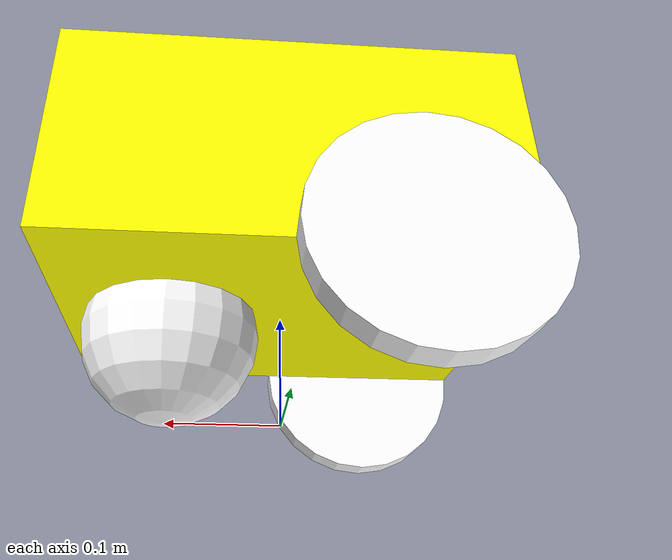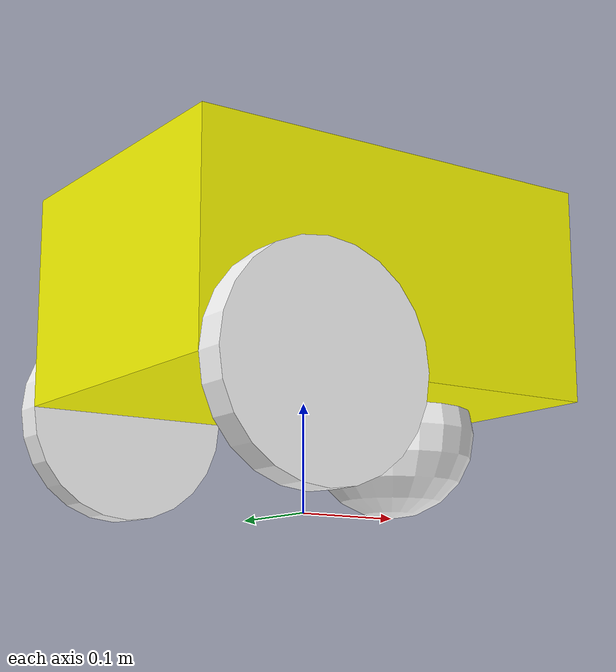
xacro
<?xml version="1.0" ?>
<robot name="simrobo" xmlns:xacro="http://www.ros.org/wiki/xacro">
  <!-- include xacro files -->
  <xacro:include filename="$(find simrobo_description)/urdf/body/body.urdf.xacro" />
  <xacro:include filename="$(find simrobo_description)/urdf/wheel/wheel.urdf.xacro" />
  <xacro:include filename="$(find simrobo_description)/urdf/wheel/caster.urdf.xacro" />
  <xacro:include filename="$(find simrobo_description)/urdf/sensors/lidar.urdf.xacro" />
  <xacro:include filename="$(find simrobo_description)/urdf/sensors/velodyne.urdf.xacro" />
  <xacro:include filename="$(find simrobo_description)/urdf/sensors/camera.urdf.xacro" />
  <xacro:include filename="$(find simrobo_description)/urdf/simrobo.ros2_control.xacro" />

  <!-- arg -->
  <xacro:arg name="use_ignition" default="true"/>
  <xacro:arg name="use_3d_lidar" default="false"/>
  <xacro:arg name="gpu" default="false"/>

  <!-- property -->
  <xacro:property name="use_ignition" value="$(arg use_ignition)"/>
  <xacro:property name="use_3d_lidar" value="$(arg use_3d_lidar)"/>
  <xacro:property name="gpu" value="$(arg gpu)"/>
  <xacro:property name="body_depth" value="0.4"/>
  <xacro:property name="body_width" value="0.3"/>
  <xacro:property name="body_height" value="0.2"/>
  <xacro:property name="body_mass" value="1"/>
  <xacro:property name="wheel_radius" value="0.1"/>
  <xacro:property name="wheel_clearance" value="0.03"/>
  <xacro:property name="wheel_mass" value="0.4"/>
  <xacro:property name="wheel_joint_x" value="-0.1"/>
  <xacro:property name="caster_radius" value="0.08"/>
  <xacro:property name="caster_mass" value="0.2"/>
  <xacro:property name="caster_joint_x" value="0.1"/>
  <xacro:property name="lidar_2d_radius" value="0.04"/>
  <xacro:property name="lidar_2d_length" value="0.04"/>
  <xacro:property name="lidar_2d_mass" value="0.015"/>
  <xacro:property name="lidar_3d_radius" value="0.103"/>
  <xacro:property name="lidar_3d_length" value="0.0727"/>
  <xacro:property name="lidar_3d_mass" value="0.830"/>
  <xacro:property name="lidar_3d_mount_mass" value="0.4"/>
  <xacro:property name="imu_length" value="0.02"/>
  <xacro:property name="imu_height" value="0.01"/>
  <xacro:property name="imu_mass" value="0.01"/>
  <xacro:property name="gps_length" value="0.02"/>
  <xacro:property name="gps_height" value="0.01"/>
  <xacro:property name="gps_mass" value="0.01"/>
  <xacro:property name="camera_depth" value="0.02"/>
  <xacro:property name="camera_width" value="0.12"/>
  <xacro:property name="camera_height" value="0.02"/>
  <xacro:property name="camera_mass" value="0.1"/>
  <xacro:property name="camera_pos_z" value="0.15"/>

  <!-- ======== Body Description ======== -->
  <link name="base_footprint"/>
  <xacro:body name="base_link" depth="${body_depth}" width="${body_width}" height="${body_height}" mass="${body_mass}">
    <origin xyz="0 0 ${wheel_radius}" rpy="0 0 0"/>
  </xacro:body>

  <!-- ======== Wheel Description ======== -->
  <xacro:wheel name="left" parent="base_link" radius="${wheel_radius}" clearance="${wheel_clearance}" mass="${wheel_mass}">
    <origin xyz="${wheel_joint_x} ${body_width/2+wheel_clearance/2} 0" rpy="${-pi/2} 0 0"/>
  </xacro:wheel>
  <xacro:wheel name="right" parent="base_link" radius="${wheel_radius}" clearance="${wheel_clearance}" mass="${wheel_mass}">
    <origin xyz="${wheel_joint_x} ${-body_width/2-wheel_clearance/2} 0" rpy="${-pi/2} 0 0"/>
  </xacro:wheel>
  <xacro:caster name="front" parent="base_link" radius="${caster_radius}" mass="${caster_mass}">
    <origin xyz="${caster_joint_x} 0 ${-wheel_radius+caster_radius}" rpy="0 0 0"/>
  </xacro:caster>

  <!-- ======== Sensors Description ======== -->
  <xacro:if value="${use_3d_lidar}">
    <link name="lidar_mount">
      <inertial>
        <origin xyz="0 0 0" rpy="0 0 0"/>
        <mass value="${lidar_3d_mount_mass}"/>
        <inertia ixx="${lidar_3d_mount_mass/12*(3*0.08*0.08+0.3*0.3)}" ixy="0" ixz="0"
                 iyx="0" iyy="${lidar_3d_mount_mass/12*(3*0.08*0.08+0.3*0.3)}" iyz="0.0"
                 izx="0" izy="0" izz="${lidar_3d_mount_mass/2*0.08*0.08}"/>
      </inertial>
      <visual>
        <origin xyz="0 0 0" rpy="0 0 0"/>
        <geometry>
          <cylinder radius="0.08" length="0.3"/>
        </geometry>
        <material name="lidar_mount_color">
          <color rgba="1.0 1.0 0.0 1.0"/>
        </material>
      </visual>
      <collision>
        <origin xyz="0 0 0" rpy="0 0 0"/>
        <geometry>
          <cylinder  radius="0.08" length="0.3"/>
        </geometry>
      </collision>
    </link>
    <joint name="lidar_mount_joint" type="fixed">
      <origin xyz="0 0 ${body_height+0.3/2}" rpy="0 0 0"/>
      <parent link="base_link"/>
      <child link="lidar_mount"/>
    </joint>
    <xacro:velodyne name="velodyne" gpu="${gpu}" parent="lidar_mount" radius="${lidar_3d_radius}" length="${lidar_3d_length}" mass="${lidar_3d_mass}">
      <origin xyz="0 0 0.15" rpy="0 0 0"/>
    </xacro:velodyne>
  </xacro:if>
  <xacro:unless value="${use_3d_lidar}">
    <xacro:lidar name="laser" use_ignition="${use_ignition}" gpu="${gpu}" parent="base_link" radius="${lidar_2d_radius}" length="${lidar_2d_length}" mass="${lidar_2d_mass}">
      <origin xyz="0 0 ${body_height+lidar_2d_length/2}" rpy="0 0 0"/>
    </xacro:lidar>
  </xacro:unless>
  <xacro:camera name="camera" use_ignition="${use_ignition}" parent="base_link" depth="${camera_depth}" width="${camera_width}" height="${camera_height}" mass="${camera_mass}">
    <origin xyz="${(body_depth+camera_depth)/2} 0 ${camera_pos_z}" rpy="0 0 0"/>
  </xacro:camera>

  <!-- ======== ros2_control ======== -->
  <xacro:simrobo_ros2_control name="simrobo" use_ignition="${use_ignition}"/>

</robot>

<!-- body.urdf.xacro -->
<robot name="body" xmlns:xacro="http://www.ros.org/wiki/xacro">

  <xacro:macro name="body" params="name depth width height mass *origin">

    <link name="${name}">
      <inertial>
        <origin xyz="0 0 0" rpy="0 0 0"/>
        <mass value="${mass}" />
        <inertia ixx="${mass/12*(width*width+height*height)}" ixy="0" ixz="0"
                 iyx="0" iyy="${mass/12*(depth*depth+height*height)}" iyz="0"
                 izx="0" izy="0" izz="${mass/12*(depth*depth+width*width)}"/>
      </inertial>
      <visual>
        <origin xyz="0 0 ${height/2}" rpy="0 0 0"/>
        <geometry>
          <box size="${depth} ${width} ${height}"/>
        </geometry>
        <material name="body_color">
          <color rgba="1.0 1.0 0.0 1.0"/>
        </material>
      </visual>
      <collision>
        <origin xyz="0 0 ${height/2}" rpy="0 0 0"/>
        <geometry>
          <box size="${depth} ${width} ${height}"/>
        </geometry>
      </collision>
    </link>

    <gazebo reference="${name}">
      <material>Gazebo/Yellow</material>
      <mu1 value="0.8"/>
      <mu2 value="0.8"/>
      <kp value="10000000.0"/>
      <kd value="1.0"/>
      <fdir1 value="0 1 0"/>
    </gazebo>

    <joint name="body_joint" type="fixed">
      <xacro:insert_block name="origin"/>
      <parent link="base_footprint"/>
      <child link="${name}"/>
      <axis xyz="0.0 0.0 1.0"/>
    </joint>
  </xacro:macro>
</robot>

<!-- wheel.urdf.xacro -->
<robot name="wheel" xmlns:xacro="http://www.ros.org/wiki/xacro">
  <xacro:include filename="$(find simrobo_description)/urdf/wheel/wheel.gazebo.xacro" />

  <xacro:macro name="wheel" params="name parent radius clearance mass *origin">
    <material name="${name}_wheel_color">
      <color rgba="1.0 1.0 1.0 1.0"/>
    </material>

    <link name="${name}_wheel_link">
      <inertial>
        <origin xyz="0 0 0" rpy="0 0 0"/>
        <mass value="${mass}"/>
        <inertia ixx="${mass/12*(3*radius*radius+clearance*clearance)}" ixy="0" ixz="0"
                 iyx="0" iyy="${mass/12*(3*radius*radius+clearance*clearance)}" iyz="0"
                 izx="0" izy="0" izz="${mass/2*radius*radius}"/>
      </inertial>
      <visual>
        <origin xyz="0 0 0" rpy="0 0 0"/>
        <geometry>
          <cylinder radius="${radius}" length="${clearance}"/>
        </geometry>
        <material name="${name}_wheel_color"/>
      </visual>
      <collision>
        <origin rpy="0 0 0" xyz="0 0 0"/>
        <geometry>
          <cylinder radius="${radius}" length="${clearance}"/>
        </geometry>
      </collision>
    </link>

    <joint name="${name}_wheel_joint" type="continuous">
      <xacro:insert_block name="origin"/>
      <parent link="${parent}"/>
      <child link="${name}_wheel_link"/>
      <axis xyz="0.0 0.0 1.0"/>
    </joint>

    <!-- Gazebo Plugin -->
    <xacro:wheel_gazebo name="${name}"/>
  </xacro:macro>
</robot>

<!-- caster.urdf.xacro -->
<robot name="caster" xmlns:xacro="http://www.ros.org/wiki/xacro">
  <xacro:include filename="$(find simrobo_description)/urdf/wheel/caster.gazebo.xacro" />

  <xacro:macro name="caster" params="name parent radius mass *origin">
    <material name="${name}_caster_color">
      <color rgba="1.0 1.0 1.0 1.0"/>
    </material>

    <link name="${name}_caster_link">
      <inertial>
        <origin xyz="0 0 0" rpy="0 0 0"/>
        <mass value="${mass}"/>
        <inertia ixx="${2/5*mass*radius*radius}" ixy="0" ixz="0"
                 iyx="0" iyy="${2/5*mass*radius*radius}" iyz="0"
                 izx="0" izy="0" izz="${2/5*mass*radius*radius}"/>
      </inertial>
      <visual>
        <origin xyz="0 0 0" rpy="0 0 0"/>
        <geometry>
          <sphere radius="${radius}"/>
        </geometry>
        <material name="${name}_caster_color"/>
      </visual>
      <collision>
        <origin rpy="0 0 0" xyz="0 0 0"/>
        <geometry>
          <sphere radius="${radius}"/>
        </geometry>
      </collision>
    </link>

    <joint name="${name}_caster_joint" type="fixed">
      <xacro:insert_block name="origin"/>
      <parent link="${parent}"/>
      <child link="${name}_caster_link"/>
      <axis xyz="0.0 0.0 1.0"/>
    </joint>

    <!-- Gazebo Plugin -->
    <xacro:caster_gazebo name="${name}"/>
  </xacro:macro>
</robot>

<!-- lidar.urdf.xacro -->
<robot name="lidar" xmlns:xacro="http://www.ros.org/wiki/xacro">
  <xacro:include filename="$(find simrobo_description)/urdf/sensors/lidar.gazebo.xacro"/>

  <xacro:macro name="lidar" params="name:=laser use_ignition:=true gpu:=false parent radius length mass *origin">
    <material name="${name}_color">
      <color rgba="0.70196 0.70196 0.70196 1.0"/>
    </material>

    <link name="${name}">
      <inertial>
        <origin xyz="0 0 0" rpy="0 0 0"/>
        <mass value="${mass}"/>
        <inertia ixx="${mass/12*(3*radius*radius+length*length)}" ixy="0" ixz="0"
                 iyx="0" iyy="${mass/12*(3*radius*radius+length*length)}" iyz="0.0"
                 izx="0" izy="0" izz="${mass/2*radius*radius}"/>
      </inertial>
      <visual>
        <origin xyz="0 0 0" rpy="0 0 0"/>
        <geometry>
          <cylinder radius="${radius}" length="${length}"/>
        </geometry>
        <material name="${name}_color"/>
      </visual>
      <collision>
        <origin xyz="0 0 0" rpy="0 0 0"/>
        <geometry>
          <cylinder  radius="${radius}" length="${length}"/>
        </geometry>
      </collision>
    </link>

    <joint name="${name}_joint" type="fixed">
      <xacro:insert_block name="origin"/>
      <parent link="${parent}"/>
      <child link="${name}"/>
    </joint>

    <!-- Gazebo Plugin -->
    <xacro:lidar_gazebo name="${name}" use_ignition="${use_ignition}" gpu="${gpu}"/>

  </xacro:macro>
</robot>

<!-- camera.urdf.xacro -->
<robot name="camera" xmlns:xacro="http://www.ros.org/wiki/xacro">
  <xacro:include filename="$(find simrobo_description)/urdf/sensors/camera.gazebo.xacro"/>

  <xacro:macro name="camera" params="name use_ignition:=true depth width height mass parent *origin">
    <material name="${name}_color">
      <color rgba="0.70196 0.70196 0.70196 1.0"/>
    </material>

    <link name="${name}_link">
      <inertial>
        <origin xyz="0 0 0" rpy="0 0 0"/>
        <mass value="${mass}" />
        <inertia ixx="${mass/12*(width*width+height*height)}" ixy="0" ixz="0"
                 iyx="0" iyy="${mass/12*(depth*depth+height*height)}" iyz="0"
                 izx="0" izy="0" izz="${mass/12*(depth*depth+width*width)}"/>
      </inertial>
      <visual>
        <origin xyz="0 0 0" rpy="0 0 0"/>
        <geometry>
          <box size="${depth} ${width} ${height}"/>
        </geometry>
        <material name="${name}_color"/>
      </visual>
      <collision>
        <origin xyz="0 0 0" rpy="0 0 0"/>
        <geometry>
          <box size="${depth} ${width} ${height}"/>
        </geometry>
      </collision>
    </link>

    <joint name="${name}_joint" type="fixed">
      <xacro:insert_block name="origin"/>
      <parent link="${parent}"/>
      <child link="${name}_link"/>
    </joint>

    <!-- Gazebo Plugin -->
    <xacro:camera_gazebo name="${name}" use_ignition="${use_ignition}"/>

  </xacro:macro>
</robot>
